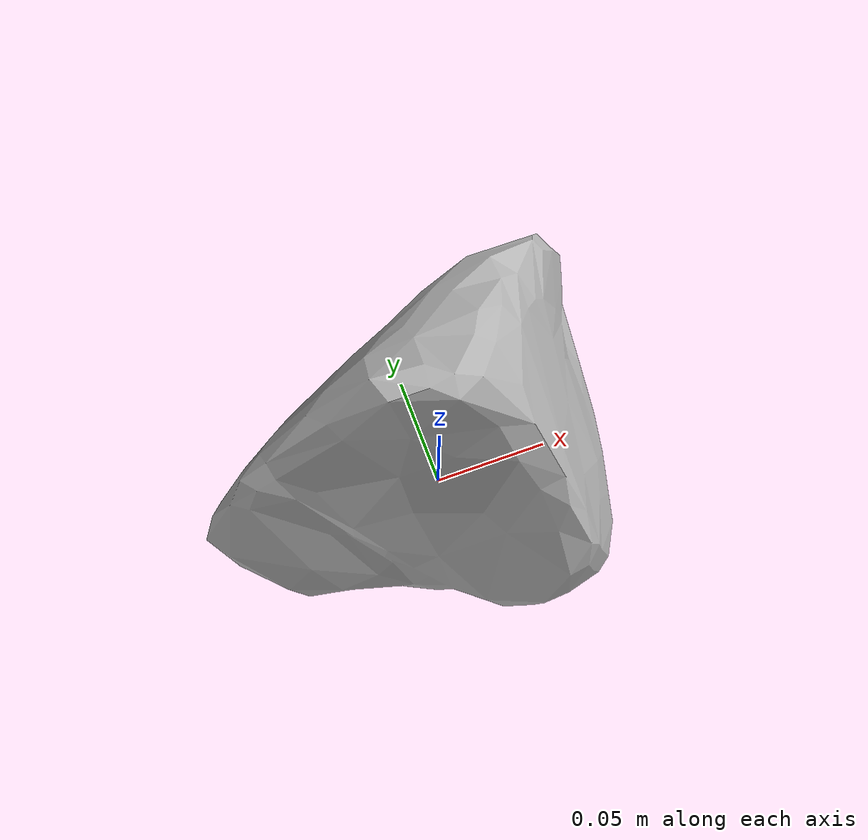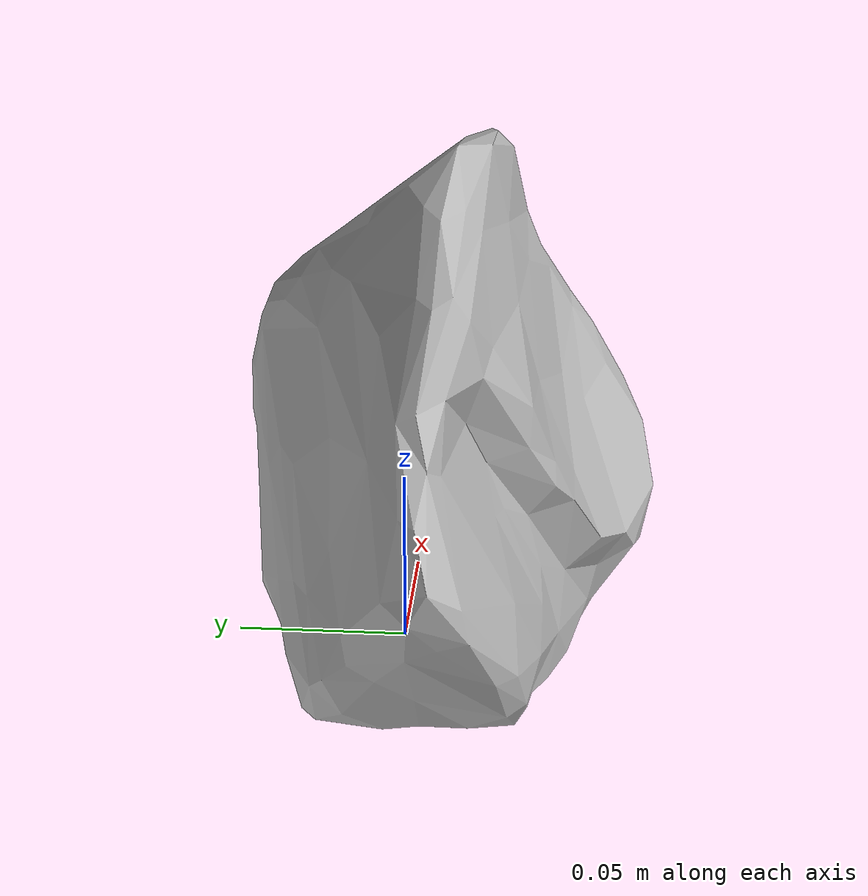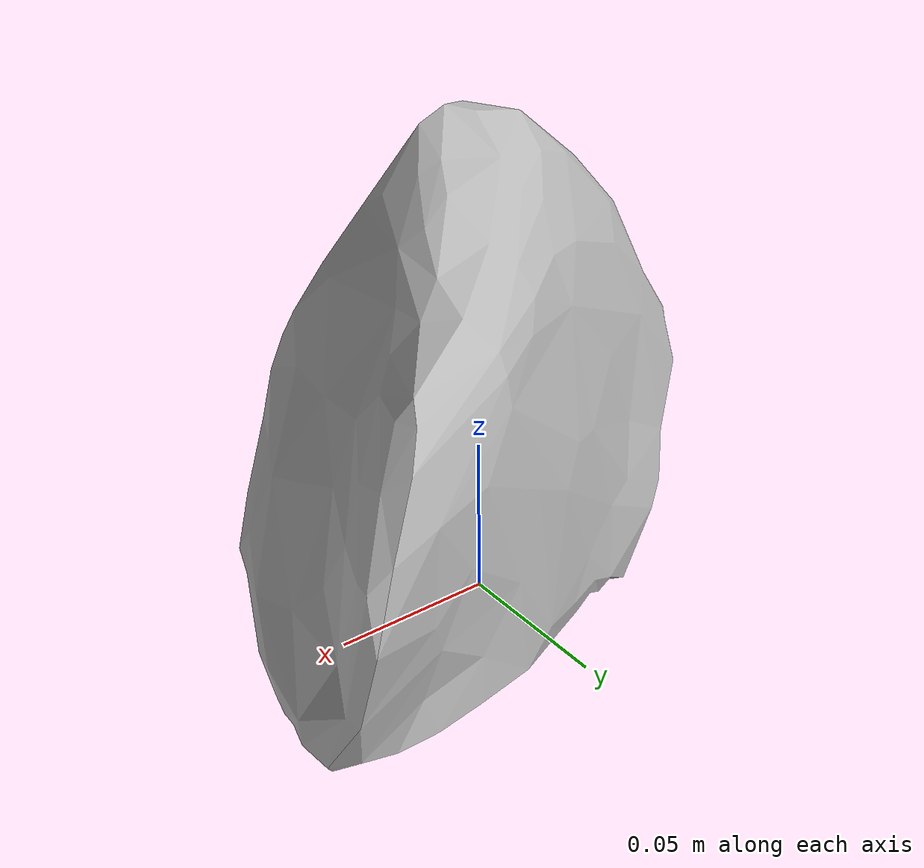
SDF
<?xml version="1.0" ?>
<sdf version="1.6">
  <model name="boulder">
    <static>1</static>
    <link name="link">
      <inertial>
        <pose>0.1738776 -0.1780197 2.880095 0 0 0</pose>
        <mass>1.0</mass>
        <inertia>
          <ixx>1874099.000000</ixx>
          <ixy>-208910.1625000</ixy>
          <ixz>205630.0250000</ixz>
          <iyy>2402889.4000000</iyy>
          <iyz>25458.6640625</iyz>
          <izz>1986932.4000000</izz>
        </inertia>
      </inertial>
      <collision name="collision">
        <geometry>
          <mesh>
            <uri>model://boulder/meshes/model.dae</uri>
            <scale>0.1 0.1 0.1</scale>
          </mesh>
        </geometry>
        <surface>
          <friction>
            <ode>
              <mu>0.6</mu>
              <mu2>0.6</mu2>
            </ode>
          </friction>
        </surface>
      </collision>
      <visual name="visual">
        <geometry>
          <mesh>
            <uri>model://boulder/meshes/model.dae</uri>
            <scale>0.1 0.1 0.1</scale>
          </mesh>
        </geometry>
      </visual>
    </link>
  </model>
</sdf>
